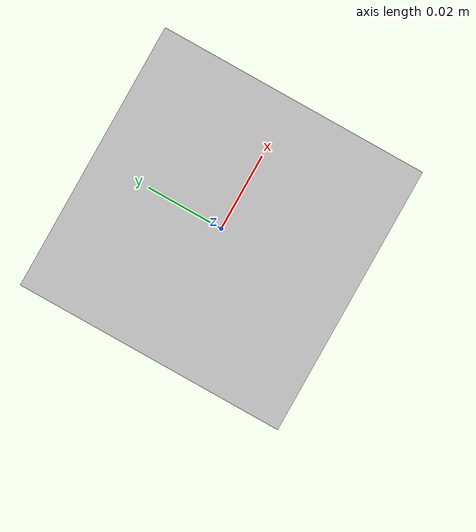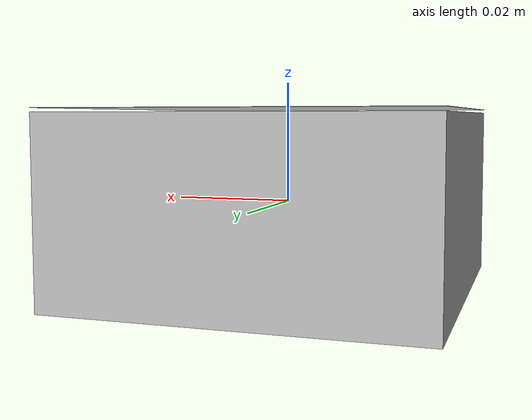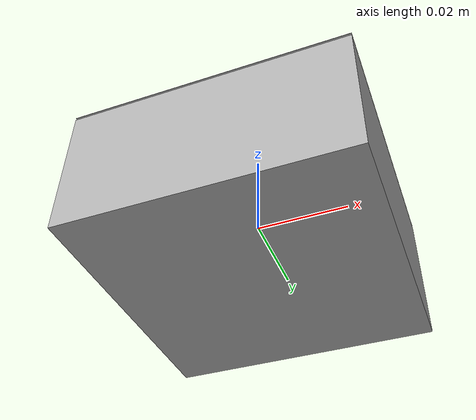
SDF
<?xml version="1.0" ?>
<sdf version="1.6">
  <model name="aruco_box">
    <static>false</static>

    <link name="link">
      <inertial>
        <mass>0.05</mass>
        <inertia>
          <ixx>1e-5</ixx><iyy>1e-5</iyy><izz>1e-5</izz>
          <ixy>0</ixy><ixz>0</ixz><iyz>0</iyz>
        </inertia>
      </inertial>

      <collision name="box_col">
        <geometry>
          <box><size>0.06 0.06 0.03</size></box>
        </geometry>
      </collision>

      <visual name="box_vis">
        <geometry>
          <box><size>0.06 0.06 0.03</size></box>
        </geometry>
        <material>
          <ambient>0.7 0.7 0.7 1</ambient>
          <diffuse>0.7 0.7 0.7 1</diffuse>
        </material>
      </visual>

      <!-- Top marker plane -->
      <visual name="marker_plane">
        <!-- box half height = 0.015, lift slightly to avoid z-fighting -->
        <pose>0 0 0.0156 0 0 0</pose>
        <geometry>
          <plane>
            <normal>0 0 1</normal>
            <size>0.06 0.06</size>
          </plane>
        </geometry>
        <material>
          <script>
            <uri>model://aruco_box/materials/scripts</uri>
            <uri>model://aruco_box/materials/textures</uri>
            <name>ArucoBox/Marker</name>
          </script>
        </material>
      </visual>

    </link>
  </model>
</sdf>
